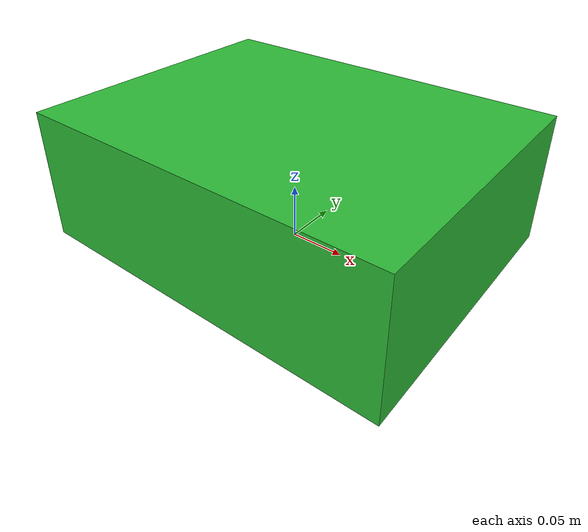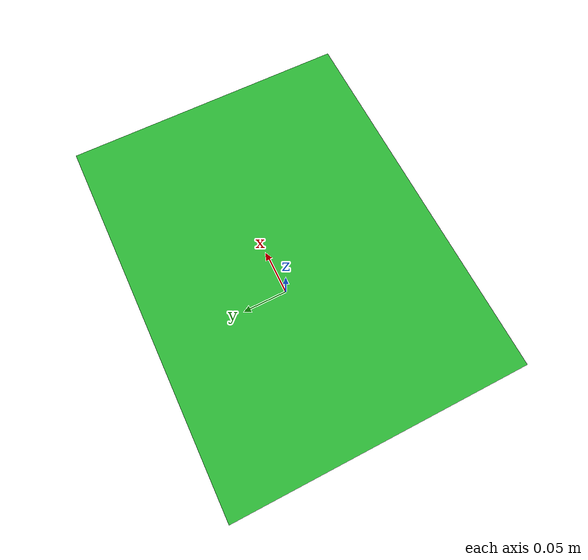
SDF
<?xml version="1.0" ?>
<sdf version="1.7">
  <model name="mobile_pick_table">
    <static>true</static>
    <link name="table_link">
      <collision name="platform_collision">
        <geometry>
          <box>
            <size>0.34 0.26 0.12</size>
          </box>
        </geometry>
        <pose>0 0 0.06 0 0 0</pose>
      </collision>
      <visual name="platform_visual">
        <geometry>
          <box>
            <size>0.34 0.26 0.12</size>
          </box>
        </geometry>
        <pose>0 0 0.06 0 0 0</pose>
        <material>
          <ambient>0.12 0.55 0.16 1.0</ambient>
          <diffuse>0.18 0.74 0.22 1.0</diffuse>
        </material>
      </visual>
    </link>
  </model>
</sdf>
